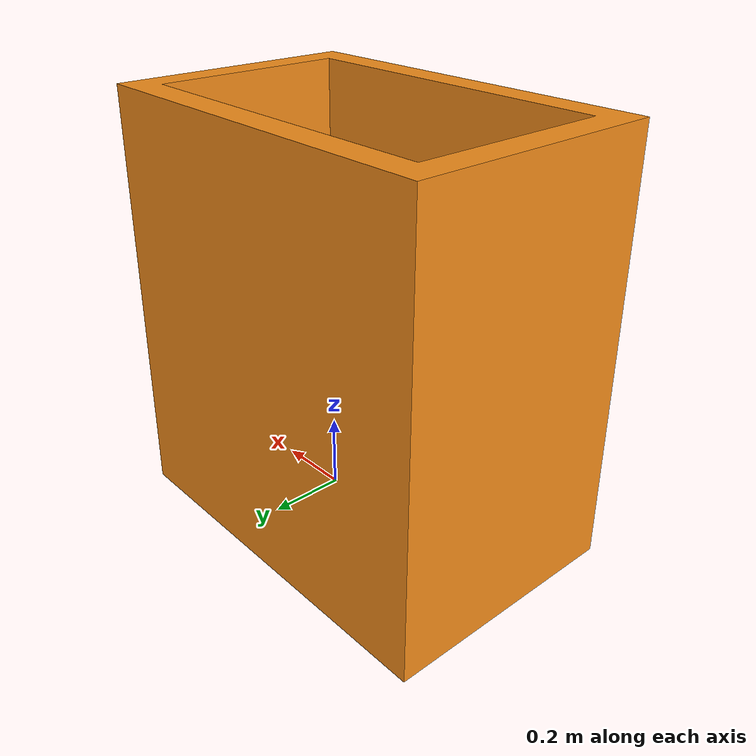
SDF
<?xml version="1.0" ?>
<sdf version="1.7">
  <model name="Box_red">
  <static>true</static>
  <pose>0 0 0 0 0 0</pose>
    <link name="Box_red">
      <pose>0 0 0 0 0 0</pose>
      <visual name="Box_red_visual">
        <geometry><mesh><uri>model://Box_red/meshes/Box.stl</uri></mesh></geometry>
        <material>
        <script>
          <uri>file://media/materials/scripts/gazebo.material</uri>
          <name>Gazebo/Orange</name>
        </script>
        </material>
      </visual>
      <collision name="Box_red_collision">
        <geometry><mesh><uri>model://Box_red/meshes/Box.stl</uri></mesh></geometry>
      </collision>
    </link>

  </model>
</sdf>
